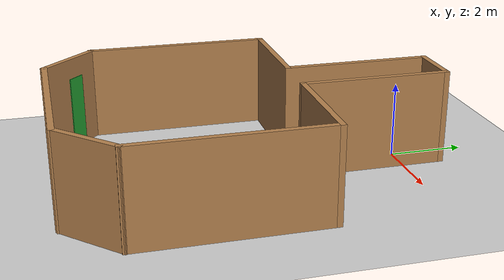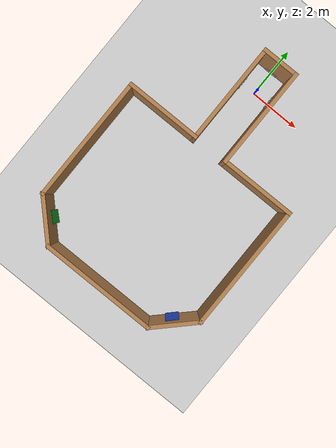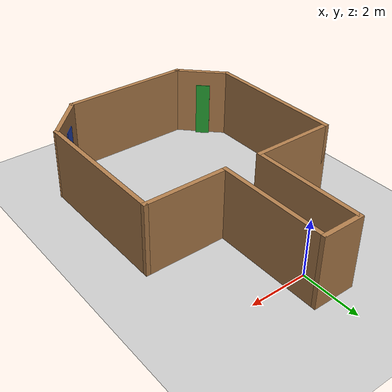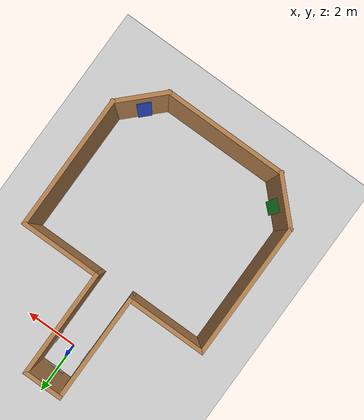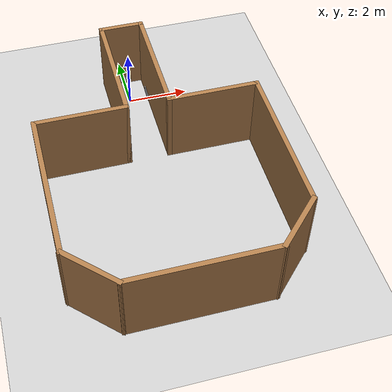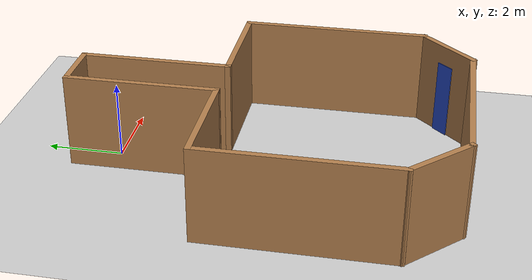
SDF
<sdf version="1.7">
 <world name="default">
  <light name="sun" type="directional">
   <pose>0 0 10 0 -0 0</pose>
   <diffuse>0.8 0.8 0.8 1</diffuse>
   <specular>0.2 0.2 0.2 1</specular>
   <attenuation>
    <range>1000</range>
    <constant>0.9</constant>
    <linear>0.01</linear>
    <quadratic>0.001</quadratic>
   </attenuation>
   <direction>-0.5 0.1 -0.9</direction>
   <spot><inner_angle>0</inner_angle><outer_angle>0</outer_angle><falloff>0</falloff></spot>
  </light>
  <model name="ground_plane">
   <static>1</static>
   <link name="link">
    <collision name="collision">
     <geometry><plane><normal>0 0 1</normal><size>100 100</size></plane></geometry>
     <surface>
      <contact><collide_bitmask>65535</collide_bitmask></contact>
      <friction><ode><mu>100</mu><mu2>50</mu2></ode></friction>
     </surface>
    </collision>
    <visual name="visual">
     <cast_shadows>0</cast_shadows>
     <geometry><plane><normal>0 0 1</normal><size>100 100</size></plane></geometry>
     <material>
      <script><uri>file://media/materials/scripts/gazebo.material</uri><name>Gazebo/Grey</name></script>
     </material>
    </visual>
   </link>
  </model>
  <gravity>0 0 -9.8</gravity>
  <magnetic_field>6e-06 2.3e-05 -4.2e-05</magnetic_field>
  <atmosphere type="adiabatic"/>
  <physics type="ode">
   <max_step_size>0.001</max_step_size>
   <real_time_factor>1</real_time_factor>
   <real_time_update_rate>1000</real_time_update_rate>
  </physics>
  <scene><ambient>0.4 0.4 0.4 1</ambient><background>0.7 0.7 0.7 1</background><shadows>1</shadows></scene>
  <spherical_coordinates>
   <surface_model>EARTH_WGS84</surface_model>
   <latitude_deg>0</latitude_deg>
   <longitude_deg>0</longitude_deg>
   <elevation>0</elevation>
   <heading_deg>0</heading_deg>
  </spherical_coordinates>
  <model name="practice_exercise1_3">
   <pose>0.022965 -3.9552 0 0 0 -3.14</pose>
   <link name="Wall_0">
    <collision name="Wall_0_Collision">
     <geometry><box><size>4 0.15 2.5</size></box></geometry>
     <pose>0 0 1.25 0 -0 0</pose>
    </collision>
    <visual name="Wall_0_Visual">
     <pose>0 0 1.25 0 -0 0</pose>
     <geometry><box><size>4 0.15 2.5</size></box></geometry>
     <material>
      <script><uri>file://media/materials/scripts/gazebo.material</uri><name>Gazebo/Wood</name></script>
      <ambient>1 1 1 1</ambient>
     </material>
     <meta><layer>0</layer></meta>
    </visual>
    <pose>-0.675 -3.09461 0 0 -0 1.5708</pose>
   </link>
   <link name="Wall_23">
    <collision name="Wall_23_Collision">
     <geometry><box><size>3 0.15 2.5</size></box></geometry>
     <pose>0 0 1.25 0 -0 0</pose>
    </collision>
    <visual name="Wall_23_Visual">
     <pose>0 0 1.25 0 -0 0</pose>
     <geometry><box><size>3 0.15 2.5</size></box></geometry>
     <material>
      <script><uri>file://media/materials/scripts/gazebo.material</uri><name>Gazebo/Wood</name></script>
      <ambient>1 1 1 1</ambient>
     </material>
     <meta><layer>0</layer></meta>
    </visual>
    <pose>-2.1 -1.16961 0 0 -0 3.14159</pose>
   </link>
   <link name="Wall_24">
    <collision name="Wall_24_Collision">
     <geometry><box><size>5 0.15 2.5</size></box></geometry>
     <pose>0 0 1.25 0 -0 0</pose>
    </collision>
    <visual name="Wall_24_Visual">
     <pose>0 0 1.25 0 -0 0</pose>
     <geometry><box><size>5 0.15 2.5</size></box></geometry>
     <material>
      <script><uri>file://media/materials/scripts/gazebo.material</uri><name>Gazebo/Wood</name></script>
      <ambient>1 1 1 1</ambient>
     </material>
     <meta><layer>0</layer></meta>
    </visual>
    <pose>-3.525 1.25539 0 0 -0 1.5708</pose>
   </link>
   <link name="Wall_27">
    <collision name="Wall_27_Collision">
     <geometry><box><size>3 0.15 2.5</size></box></geometry>
     <pose>0 0 1.25 0 -0 0</pose>
    </collision>
    <visual name="Wall_27_Visual">
     <pose>0 0 1.25 0 -0 0</pose>
     <geometry><box><size>3 0.15 2.5</size></box></geometry>
     <material>
      <script><uri>file://media/materials/scripts/gazebo.material</uri><name>Gazebo/Wood</name></script>
      <ambient>1 1 1 1</ambient>
     </material>
     <meta><layer>0</layer></meta>
    </visual>
    <pose>2.1 -1.16961 0 0 -0 0</pose>
   </link>
   <link name="Wall_28">
    <collision name="Wall_28_Collision">
     <geometry><box><size>5 0.15 2.5</size></box></geometry>
     <pose>0 0 1.25 0 -0 0</pose>
    </collision>
    <visual name="Wall_28_Visual">
     <pose>0 0 1.25 0 -0 0</pose>
     <geometry><box><size>5 0.15 2.5</size></box></geometry>
     <material>
      <script><uri>file://media/materials/scripts/gazebo.material</uri><name>Gazebo/Wood</name></script>
      <ambient>1 1 1 1</ambient>
     </material>
     <meta><layer>0</layer></meta>
    </visual>
    <pose>3.525 1.25539 0 0 -0 1.5708</pose>
   </link>
   <link name="Wall_30">
    <collision name="Wall_30_Collision">
     <geometry><box><size>2 0.15 2.5</size></box></geometry>
     <pose>0 0 1.25 0 -0 0</pose>
    </collision>
    <visual name="Wall_30_Visual">
     <pose>0 0 1.25 0 -0 0</pose>
     <geometry><box><size>2 0.15 2.5</size></box></geometry>
     <material>
      <script><uri>file://media/materials/scripts/gazebo.material</uri><name>Gazebo/Wood</name></script>
      <ambient>1 1 1 1</ambient>
     </material>
     <meta><layer>0</layer></meta>
    </visual>
    <pose>-2.87093 4.33447 0 0 -0 0.785398</pose>
   </link>
   <link name="Wall_31">
    <collision name="Wall_31_Collision">
     <geometry><box><size>4.58371 0.15 2.5</size></box></geometry>
     <pose>0 0 1.25 0 -0 0</pose>
    </collision>
    <visual name="Wall_31_Visual">
     <pose>0 0 1.25 0 -0 0</pose>
     <geometry><box><size>4.58371 0.15 2.5</size></box></geometry>
     <material>
      <script><uri>file://media/materials/scripts/gazebo.material</uri><name>Gazebo/Wood</name></script>
      <ambient>1 1 1 1</ambient>
     </material>
     <meta><layer>0</layer></meta>
    </visual>
    <pose>0 4.98854 0 0 -0 0</pose>
   </link>
   <link name="Wall_32">
    <collision name="Wall_32_Collision">
     <geometry><box><size>2 0.15 2.5</size></box></geometry>
     <pose>0 0 1.25 0 -0 0</pose>
    </collision>
    <visual name="Wall_32_Visual">
     <pose>0 0 1.25 0 -0 0</pose>
     <geometry><box><size>2 0.15 2.5</size></box></geometry>
     <material>
      <script><uri>file://media/materials/scripts/gazebo.material</uri><name>Gazebo/Wood</name></script>
      <ambient>1 1 1 1</ambient>
     </material>
     <meta><layer>0</layer></meta>
    </visual>
    <pose>2.87093 4.33447 0 0 -0 -0.785398</pose>
   </link>
   <link name="Wall_7">
    <collision name="Wall_7_Collision">
     <geometry><box><size>1.5 0.15 2.5</size></box></geometry>
     <pose>0 0 1.25 0 -0 0</pose>
    </collision>
    <visual name="Wall_7_Visual">
     <pose>0 0 1.25 0 -0 0</pose>
     <geometry><box><size>1.5 0.15 2.5</size></box></geometry>
     <material>
      <script><uri>file://media/materials/scripts/gazebo.material</uri><name>Gazebo/Wood</name></script>
      <ambient>1 1 1 1</ambient>
     </material>
     <meta><layer>0</layer></meta>
    </visual>
    <pose>0 -5.01961 0 0 -0 0</pose>
   </link>
   <link name="Wall_8">
    <collision name="Wall_8_Collision">
     <geometry><box><size>4 0.15 2.5</size></box></geometry>
     <pose>0 0 1.25 0 -0 0</pose>
    </collision>
    <visual name="Wall_8_Visual">
     <pose>0 0 1.25 0 -0 0</pose>
     <geometry><box><size>4 0.15 2.5</size></box></geometry>
     <material>
      <script><uri>file://media/materials/scripts/gazebo.material</uri><name>Gazebo/Wood</name></script>
      <ambient>1 1 1 1</ambient>
     </material>
     <meta><layer>0</layer></meta>
    </visual>
    <pose>0.675 -3.09461 0 0 -0 1.5708</pose>
   </link>
   <static>1</static>
  </model>
  <model name="blue_panel">
   <static>1</static>
   <link name="box">
    <collision name="collision"><geometry><box><size>0.5 0.025 2</size></box></geometry></collision>
    <visual name="visual">
     <geometry><box><size>0.5 0.025 2</size></box></geometry>
     <material>
      <script>
       <uri>model://blue_panel/materials/scripts</uri>
       <uri>model://blue_panel/materials/textures</uri>
       <name>blue_panel</name>
      </script>
     </material>
    </visual>
   </link>
   <pose>2.78935 -8.2518 1.00515 0 -0 0.796209</pose>
  </model>
  <model name="green_panel">
   <static>1</static>
   <link name="box">
    <collision name="collision"><geometry><box><size>0.5 0.025 2</size></box></geometry></collision>
    <visual name="visual">
     <geometry><box><size>0.5 0.025 2</size></box></geometry>
     <material>
      <script>
       <uri>model://green_panel/materials/scripts</uri>
       <uri>model://green_panel/materials/textures</uri>
       <name>green_panel</name>
      </script>
     </material>
    </visual>
   </link>
   <pose>-2.77185 -8.13102 0.999405 0 0 -0.745979</pose>
  </model>
  <model name="cat_panel">
   <static>1</static>
   <link name="box">
    <collision name="collision"><geometry><box><size>0.5 0.025 0.24</size></box></geometry></collision>
    <visual name="visual">
     <geometry><box><size>0.5 0.025 0.24</size></box></geometry>
     <material>
      <script>
       <uri>model://cat_panel/materials/scripts</uri>
       <uri>model://cat_panel/materials/textures</uri>
       <name>cat_panel</name>
      </script>
     </material>
    </visual>
   </link>
   <pose>-0.014036 0.976026 0.194886 0 -0 0</pose>
  </model>
  <model name="dog_panel">
   <static>1</static>
   <link name="box">
    <collision name="collision"><geometry><box><size>0.5 0.025 0.24</size></box></geometry></collision>
    <visual name="visual">
     <geometry><box><size>0.5 0.025 0.24</size></box></geometry>
     <material>
      <script>
       <uri>model://dog_panel/materials/scripts</uri>
       <uri>model://dog_panel/materials/textures</uri>
       <name>dog_panel</name>
      </script>
     </material>
    </visual>
   </link>
   <pose>0.602324 0.040937 0.190926 0 0 -1.57442</pose>
  </model>
  <model name="dog_panel_0">
   <static>1</static>
   <link name="box">
    <collision name="collision"><geometry><box><size>0.5 0.025 0.24</size></box></geometry></collision>
    <visual name="visual">
     <geometry><box><size>0.5 0.025 0.24</size></box></geometry>
     <material>
      <script>
       <uri>model://dog_panel/materials/scripts</uri>
       <uri>model://dog_panel/materials/textures</uri>
       <name>dog_panel</name>
      </script>
     </material>
    </visual>
   </link>
   <pose>-0.573622 0.027702 0.182059 0 -0 1.56956</pose>
  </model>
 </world>
</sdf>
